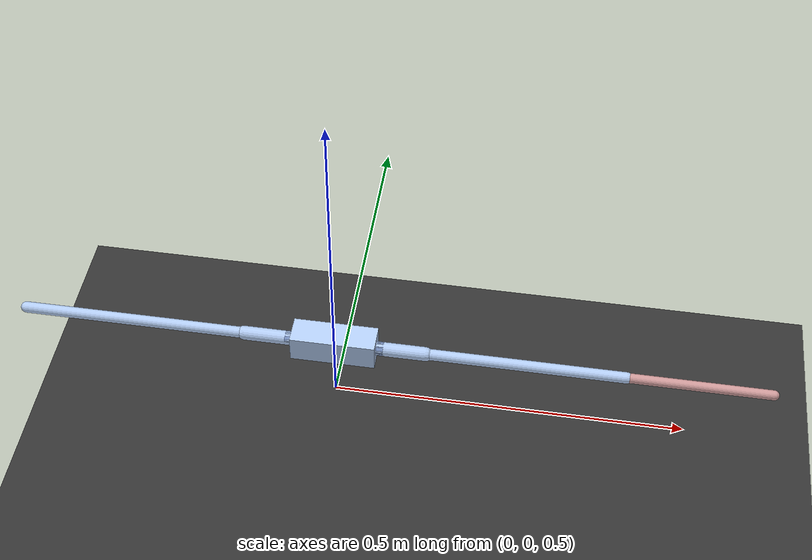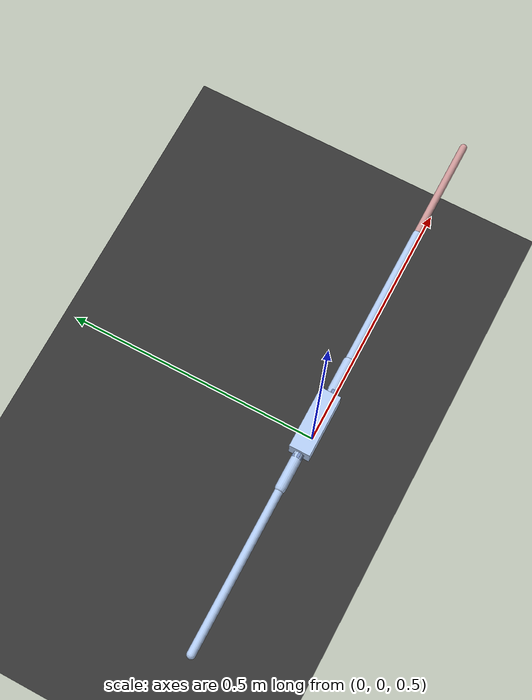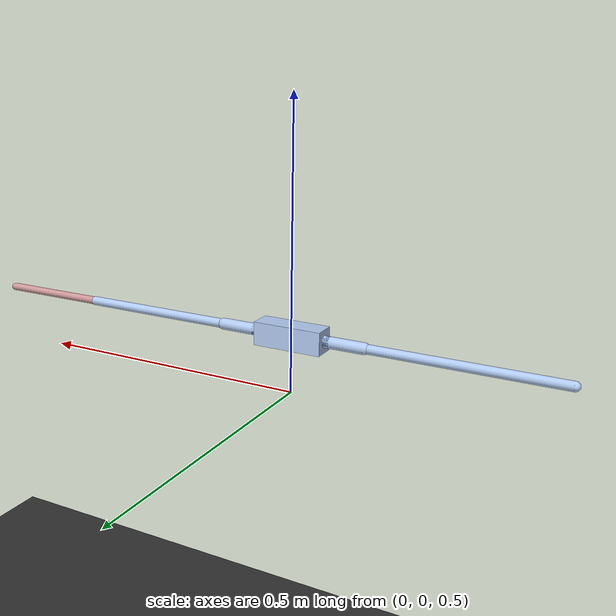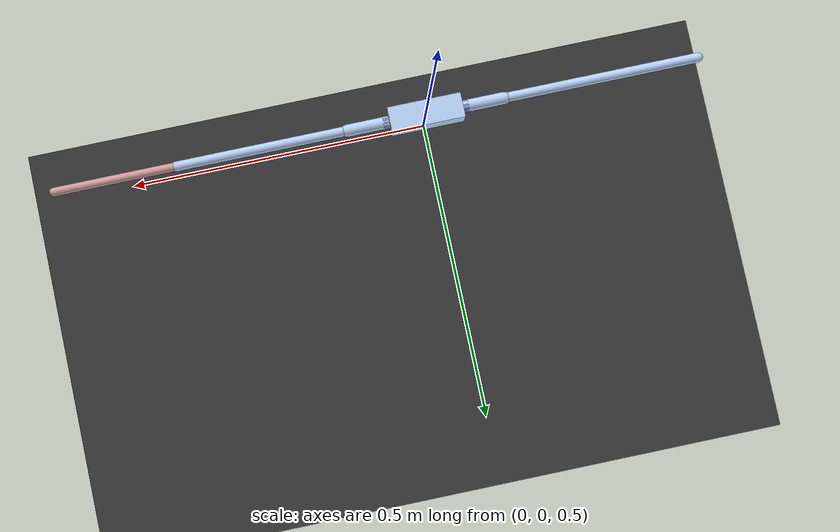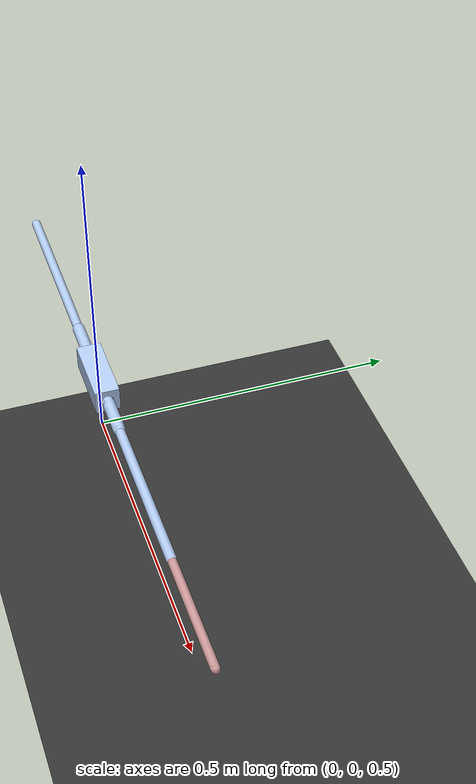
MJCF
<mujoco model="paw_simple">
  <compiler angle="radian" inertiafromgeom="true"/>
  <option timestep="0.001" integrator="implicit"/>

  <default>
    <geom rgba="0.7 0.8 0.95 1" density="500"/>
    <joint damping="0.05"/>
  </default>

  <worldbody>
    <geom name="floor" type="plane" size="5 5 0.1" rgba="0.2 0.2 0.2 1"/>

    <body name="root" pos="0 0 0.6">
      <joint name="slide_x" type="slide" axis="1 0 0" range="-2 2"/>
      <joint name="slide_z" type="slide" axis="0 0 1" range="0 2"/>
      <joint name="hinge_y" type="hinge" axis="0 1 0" range="-0.2 0.2" damping="0.1"/>

      <body name="base" pos="0 0 0">
        <geom name="torso" type="box" size="0.06 0.02 0.02"/>
        <geom name="hip_bar" type="capsule" fromto="-0.07 0 0 0.07 0 0" size="0.01" rgba="0.5 0.6 0.8 1"/>

        <!-- Left chain -->
        <body name="left_upper" pos="-0.07 0 0">
          <joint name="hip_left" type="hinge" axis="0 -1 0" range="-3.14 3.14" damping="0.1"/>
          <geom name="left_upper_geom" type="capsule" fromto="0 0 0 0.20 0 0" size="0.01"/>

          <body name="left_lower" pos="0.20 0 0">
            <joint name="left_knee" type="hinge" axis="0 -1 0" range="-3.14 3.14" damping="0.1"/>
            <geom name="left_lower_geom" type="capsule" fromto="0 0 0 0.28 0 0" size="0.008"/>
            <site name="left_endeff" size="0.004" pos="0.28 0 0" rgba="1 0 0 1"/>

            <!-- Foot body attached to left chain -->
            <body name="foot" pos="0.28 0 0">
              <joint name="foot_hinge" type="hinge" axis="0 -1 0" range="-3.14 3.14" damping="0.05"/>
              <geom name="foot_geom" type="capsule" fromto="0 0 0 0.20 0 0" size="0.007" rgba="0.8 0.6 0.6 1"/>
              <site name="foot_connect" size="0.004" pos="0.20 0 0" rgba="1 0 0 1"/>
            </body>
          </body>
        </body>

        <!-- Right chain (mirrored) -->
        <body name="right_upper" pos="0.07 0 0">
          <joint name="hip_right" type="hinge" axis="0 -1 0" range="-3.14 3.14" damping="0.1"/>
          <geom name="right_upper_geom" type="capsule" fromto="0 0 0 -0.20 0 0" size="0.01"/>

          <body name="right_lower" pos="-0.20 0 0">
            <joint name="right_knee" type="hinge" axis="0 -1 0" range="-3.14 3.14" damping="0.1"/>
            <geom name="right_lower_geom" type="capsule" fromto="0 0 0 -0.32 0 0" size="0.008"/>
            <site name="right_endeff" size="0.004" pos="-0.32 0 0" rgba="1 0 0 1"/>
          </body>
        </body>
      </body>
    </body>
  </worldbody>

  <equality>
    <connect name="paw_link" site1="foot_connect" site2="right_endeff"/>
  </equality>

  <actuator>
    <motor name="hip_left" joint="hip_left" ctrlrange="-44 44"/>
    <motor name="hip_right" joint="hip_right" ctrlrange="-44 44"/>
  </actuator>

  <keyframe>
    <key name="home" qpos="0 0.6 0 -0.9 1.6 0.2 0.9 -1.2"/>
  </keyframe>
</mujoco>
